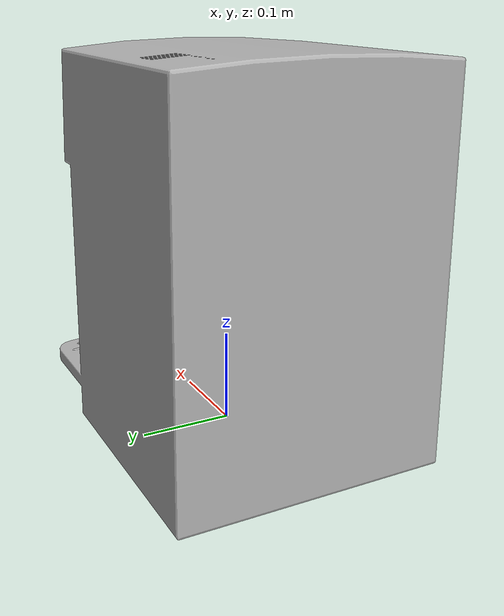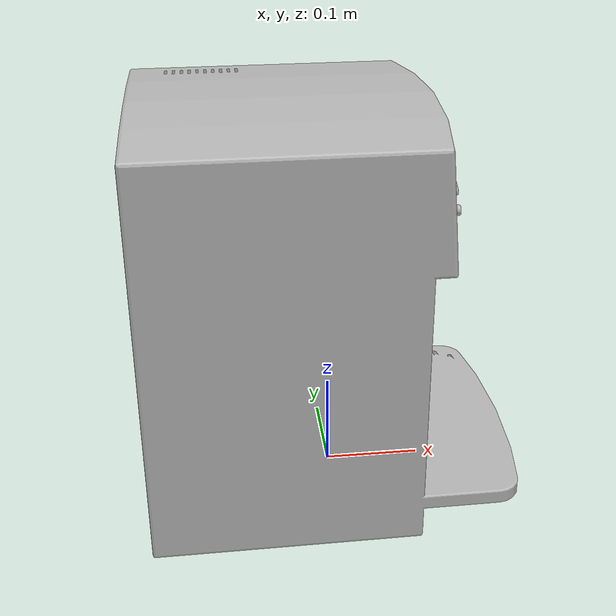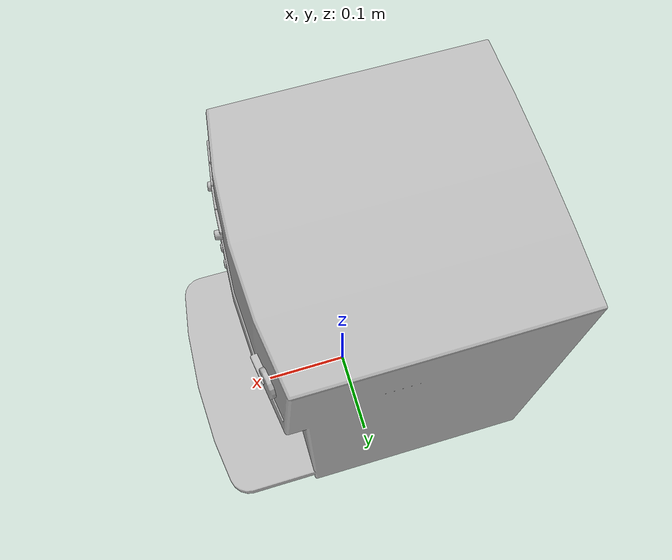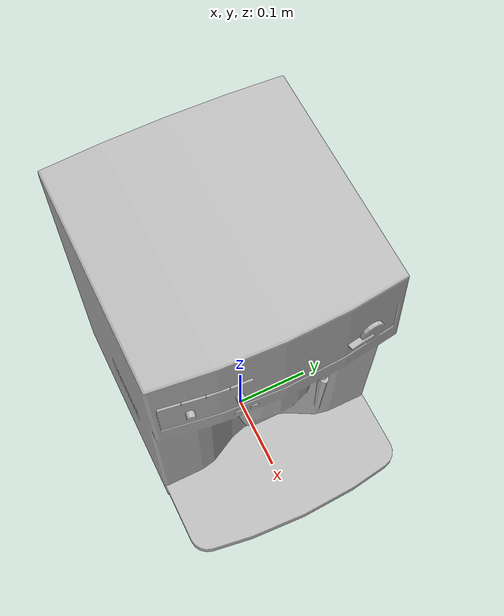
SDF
<?xml version='1.0'?>
<sdf version='1.4'>
  <model name='221'>
    <pose>0 0 0 0 0 0</pose>
    <static>true</static>
    <link name='link'>
      <collision name='collision'>
        <pose>0 0 0 0 0 0</pose>
        <geometry>
          <box>
            <size>0.38 0.29 2</size>
          </box>
        </geometry>
      </collision>
      <visual name='visual'>
        <pose>0 0 0 0 0 0</pose>
        <geometry>
          <mesh><uri>model://221/221.dae</uri></mesh>
        </geometry>
      </visual>
    </link>
  </model>
</sdf>
